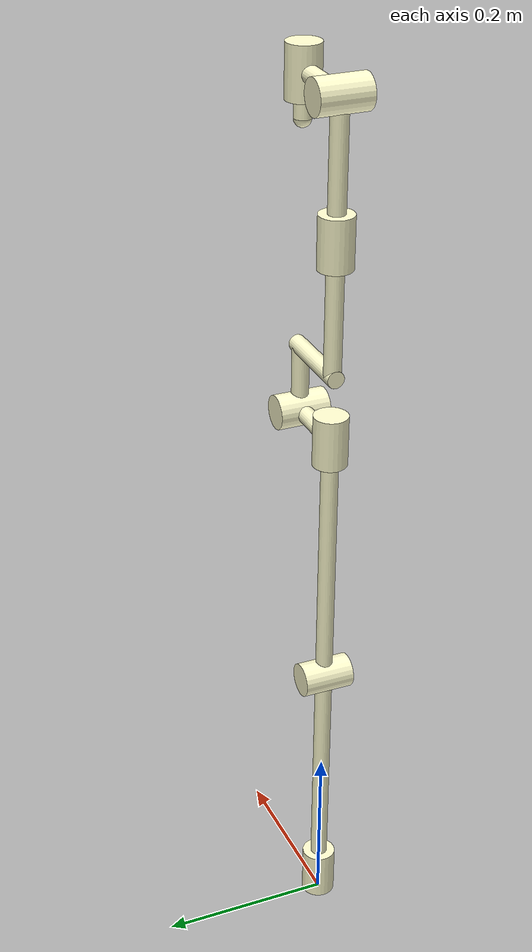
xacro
<?xml version="1.0"?>
<robot name="robot7R" xmlns:xacro="http://ros.org/wiki/xacro">
  <xacro:arg name="prefix" default=""/>

  <xacro:include filename="$(find taskspace_control_examples)/urdf/robot7R_macro.xacro"/>
  <xacro:robot7R_macro prefix="$(arg prefix)"/>

  <!-- colors -->
  <material name="cream">
    <color rgba="1.0 0.99 0.81 1.0"/>
  </material>

  <!-- Connect to world -->
  <link name="world"/>
  <joint name="world_base_link" type="fixed">
    <parent link="world"/>
    <child link = "base_link"/>
    <origin xyz="0.0 0.0 0.0" rpy="0.0 0.0 0.0"/>
  </joint>

  <xacro:include filename="$(find taskspace_control_examples)/urdf/robot7R.ros2_control.xacro"/>
  <xacro:robot7R_ros2_control prefix="$(arg prefix)"/>
</robot>

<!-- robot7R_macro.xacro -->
<robot xmlns:xacro="http://www.ros.org/wiki/xacro">

  <!--
  A fictitious robot model for testing purposes.
  The kinematics is roughly inspired by the FRANKA RESEARCH 3.
  -->

  <xacro:macro name="robot7R_macro" params="prefix">

    <!-- joint properties -->
    <xacro:property name="joint_radius" value="0.02" />
    <xacro:property name="joint_length" value="0.06" />

    <!-- link properties -->
    <xacro:property name="link_radius" value="0.01" />
    <xacro:property name="link1_length" value="0.333" />
    <xacro:property name="link2_length" value="0.316" />
    <xacro:property name="link3_length" value="0.0825" />
    <xacro:property name="link4_length" value="0.384" />
    <xacro:property name="link6_length" value="0.088" />
    <xacro:property name="link7_length" value="0.05" />

    <!-- links -->
    <link name="${prefix}base_link"/>
    <link name="${prefix}link1">
      <visual name="joint1">
        <origin xyz="0 0 ${-link1_length + joint_length / 2}" rpy="0 0 0" />
        <geometry>
          <cylinder length="${joint_length}" radius="${joint_radius}"/>
        </geometry>
        <material name="cream"/>
      </visual>
      <visual name="link1">
        <origin xyz="0 0 ${-link1_length / 2}" rpy="0 0 0" />
        <geometry>
          <cylinder length="${link1_length}" radius="${link_radius}"/>
        </geometry>
        <material name="cream"/>
      </visual>
    </link>
    <link name="${prefix}link2">
      <visual name="joint2">
        <origin xyz="0 0 0" rpy="0 0 0" />
        <geometry>
          <cylinder length="${joint_length}" radius="${joint_radius}"/>
        </geometry>
        <material name="cream"/>
      </visual>
      <visual name="link2">
        <origin xyz="0 -${link2_length / 2.0} 0" rpy="${pi / 2} 0 0" />
        <geometry>
          <cylinder length="${link2_length}" radius="${link_radius}"/>
        </geometry>
        <material name="cream"/>
      </visual>
    </link>
    <link name="${prefix}link3">
      <visual name="joint3">
        <origin xyz="0 0 0" rpy="0 0 0" />
        <geometry>
          <cylinder length="${joint_length}" radius="${joint_radius}"/>
        </geometry>
        <material name="cream"/>
      </visual>
      <visual name="link3">
        <origin xyz="${link3_length / 2} 0 0" rpy="0 ${pi / 2} 0" />
        <geometry>
          <cylinder length="${link3_length}" radius="${link_radius}"/>
        </geometry>
        <material name="cream"/>
      </visual>
    </link>
    <link name="${prefix}link4">
      <visual name="joint4">
        <origin xyz="0 0 0" rpy="0 0 0" />
        <geometry>
          <cylinder length="${joint_length}" radius="${joint_radius}"/>
        </geometry>
        <material name="cream"/>
      </visual>
      <visual name="link4_1">
        <origin xyz="0 ${link4_length * 0.1} 0" rpy="${pi / 2.0} 0 0" />
        <geometry>
          <cylinder length="${link4_length * .2}" radius="${link_radius}"/>
        </geometry>
        <material name="cream"/>
      </visual>
      <visual name="link4_2">
        <origin xyz="-${link3_length / 2} ${link4_length * 0.2} 0" rpy="0 ${pi / 2.0} 0" />
        <geometry>
          <cylinder length="${link3_length + link_radius * 2}" radius="${link_radius}"/>
        </geometry>
        <material name="cream"/>
      </visual>
    </link>
    <link name="${prefix}link5">
      <visual name="joint5">
        <origin xyz="0 0 -${link4_length * 0.4}" rpy="0 0 0" />
        <geometry>
          <cylinder length="${joint_length}" radius="${joint_radius}"/>
        </geometry>
        <material name="cream"/>
      </visual>
      <visual name="link4_3">
        <origin xyz="0 0 -${link4_length * 0.4}" rpy="0 0 0" />
        <geometry>
          <cylinder length="${link4_length * 0.8}" radius="${link_radius}"/>
        </geometry>
        <material name="cream"/>
      </visual>
      <visual name="joint6">
        <origin xyz="0 0 0" rpy="${pi / 2.0} 0 0" />
        <geometry>
          <cylinder length="${joint_length}" radius="${joint_radius}"/>
        </geometry>
        <material name="cream"/>
      </visual>
    </link>
    <link name="${prefix}link6">
      <visual name="link6">
        <origin xyz="${link6_length / 2.0} 0 0" rpy="0 ${pi / 2} 0" />
        <geometry>
          <cylinder length="${link6_length}" radius="${link_radius}"/>
        </geometry>
        <material name="cream"/>
      </visual>
    </link>
    <link name="${prefix}link7">
      <visual name="joint7">
        <origin xyz="0 0 0" rpy="0 0 0" />
        <geometry>
          <cylinder length="${joint_length}" radius="${joint_radius}"/>
        </geometry>
        <material name="cream"/>
      </visual>
      <visual name="link7">
        <origin xyz="0 0 ${link7_length / 2.0}" rpy="0 0 0" />
        <geometry>
          <cylinder length="${link7_length}" radius="${link_radius}"/>
        </geometry>
        <material name="cream"/>
      </visual>
    </link>

    <!-- joints -->
    <joint name="${prefix}joint1" type="revolute">
      <parent link="${prefix}base_link"/>
      <child link = "${prefix}link1"/>
      <origin xyz="0.0 0.0 ${link1_length}" rpy="0.0 0.0 0.0"/>
      <axis xyz="0 0 1"/>
      <limit lower="-2.7437" upper="2.7437" effort="1.0" velocity="2.62"/>
    </joint>
    <joint name="${prefix}joint2" type="revolute">
      <parent link="${prefix}link1"/>
      <child link = "${prefix}link2"/>
      <origin xyz="0.0 0.0 0.0" rpy="-${pi / 2.0} 0.0 0.0"/>
      <axis xyz="0 0 1"/>
      <limit lower="-1.7837" upper="1.7837" effort="1.0" velocity="2.62"/>
    </joint>
    <joint name="${prefix}joint3" type="revolute">
      <parent link="${prefix}link2"/>
      <child link = "${prefix}link3"/>
      <origin xyz="0.0 -${link2_length} 0.0" rpy="${pi / 2.0} 0.0 0.0"/>
      <axis xyz="0 0 1"/>
      <limit lower="-2.9007" upper="2.9007" effort="1.0" velocity="2.62"/>
    </joint>
    <joint name="${prefix}joint4" type="revolute">
      <parent link="${prefix}link3"/>
      <child link = "${prefix}link4"/>
      <origin xyz="${link3_length} 0.0 0.0" rpy="${pi / 2.0} 0.0 0.0"/>
      <axis xyz="0 0 1"/>
      <limit lower="-3.14" upper="0.0" effort="1.0" velocity="2.62"/>
    </joint>
    <joint name="${prefix}joint5" type="revolute">
      <parent link="${prefix}link4"/>
      <child link = "${prefix}link5"/>
      <origin xyz="-${link3_length} ${link4_length} 0.0" rpy="-${pi / 2} 0.0 0.0" />
      <axis xyz="0 0 1"/>
      <limit lower="-2.8065" upper="2.8065" effort="1.0" velocity="5.26"/>
    </joint>
    <joint name="${prefix}joint6" type="revolute">
      <parent link="${prefix}link5" />
      <child link = "${prefix}link6"/>
      <origin xyz="0.0 0.0 0.0" rpy="${pi / 2.0} 0.0 0.0"/>
      <axis xyz="0 0 1"/>
      <limit lower="0.0" upper="4.2" effort="1.0" velocity="4.18"/>
    </joint>
    <joint name="${prefix}joint7" type="revolute">
      <parent link="${prefix}link6"/>
      <child link = "${prefix}link7"/>
      <origin xyz="${link6_length} 0.0 0.0" rpy="${pi / 2.0} 0.0 0.0"/>
      <axis xyz="0 0 1"/>
      <limit lower="-3.0159" upper="3.0159" effort="1.0" velocity="5.26"/>
    </joint>

    <!-- The default end-effector -->
    <joint name="${prefix}tool0_joint" type="fixed">
      <origin xyz="0 0 ${link7_length}" rpy="0 0 0"/>
      <parent link="${prefix}link7"/>
      <child link="${prefix}tool0"/>
    </joint>
    <link name="${prefix}tool0">
      <visual>
        <origin xyz="0 0 0" rpy="0 0 0" />
        <geometry>
          <sphere radius="${link_radius}"/>
        </geometry>
        <material name="cream"/>
      </visual>
    </link>
    <link name="${prefix}tool"/>
    <joint name="${prefix}tool_joint" type="fixed">
      <origin xyz="0 0 0" rpy="${-pi/2} ${-pi/2} 0"/>
      <parent link="${prefix}tool0"/>
      <child link="${prefix}tool"/>
    </joint>
  </xacro:macro>
</robot>
